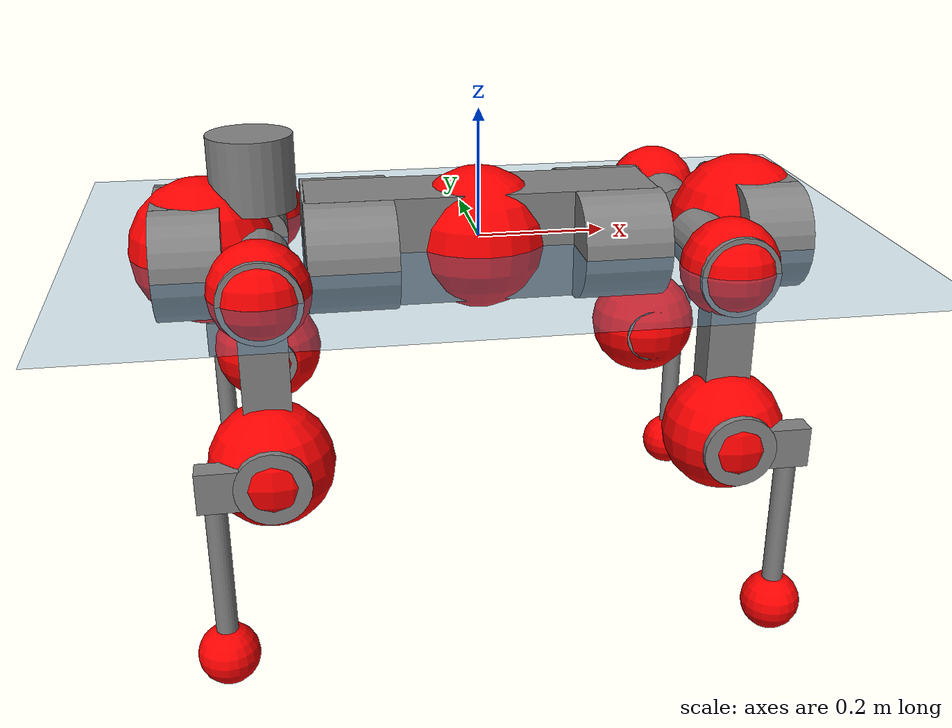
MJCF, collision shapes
<mujoco model="anymal_c">
  <compiler angle="radian" assetdir="assets" balanceinertia="true" inertiafromgeom="false"/>

  <option timestep="0.005" density="1.2" viscosity="2e-05"/>

  <size nkey="1"/>

  <visual>
    <quality shadowsize="8192"/>
    <map shadowclip="0.5"/>
  </visual>

  <default>
    <default class="/">
      <material specular="0" shininess="0.25"/>
      <geom contype="0" conaffinity="0" group="1" solref="-1000 -80"/>
      <site size="0.01 0.005 0.005" group="5"/>
      <general forcelimited="true" forcerange="-80 80" biastype="affine" gainprm="80" biasprm="0 -80 -2"/>
      <default class="anymal_c">
        <joint armature="0.01" damping="0.01" frictionloss="0.1"/>
        <default class="visual">
          <geom type="mesh" group="2"/>
          <default class="visual_zflip"/>
        </default>
        <default class="collision">
          <geom type="cylinder" group="3"/>
          <default class="foot">
            <geom size="0.03 0 0" type="sphere" condim="6" priority="1" friction="0.8 0.02 0.01" solimp="0.015 1 0.03"/>
          </default>
        </default>
      </default>
      <default class="reward_collision_sphere">
        <geom group="5" rgba="1 0 0 1"/>
      </default>
    </default>
  </default>

  <asset>
    <texture type="skybox" colorspace="auto" name="//unnamed_texture_0" builtin="gradient" rgb1="0.95 0.95 0.95" rgb2="0.95 0.95 0.95" width="100" height="600"/>
    <texture type="2d" colorspace="auto" name="texplane" builtin="checker" rgb1="0.345 0.575 0.748" rgb2="0.345 0.575 0.748" markrgb="1 1 1" width="512" height="512"/>
    <texture type="2d" colorspace="linear" name="base" file="base.png"/>
    <texture type="2d" colorspace="linear" name="top_shell" file="top_shell.png"/>
    <texture type="2d" colorspace="linear" name="bottom_shell" file="bottom_shell.png"/>
    <texture type="2d" colorspace="linear" name="remote" file="remote.png"/>
    <texture type="2d" colorspace="linear" name="hatch" file="hatch.png"/>
    <texture type="2d" colorspace="linear" name="handle" file="handle.png"/>
    <texture type="2d" colorspace="linear" name="face" file="face.png"/>
    <texture type="2d" colorspace="linear" name="battery" file="battery.png"/>
    <texture type="2d" colorspace="linear" name="lidar_cage" file="lidar_cage.png"/>
    <texture type="2d" colorspace="linear" name="depth_camera" file="depth_camera.png"/>
    <texture type="2d" colorspace="linear" name="wide_angle_camera" file="wide_angle_camera.png"/>
    <texture type="2d" colorspace="linear" name="lidar" file="lidar.png"/>
    <texture type="2d" colorspace="linear" name="drive" file="drive.png"/>
    <texture type="2d" colorspace="linear" name="hip_l" file="hip_l.png"/>
    <texture type="2d" colorspace="linear" name="shank_l" file="shank_l.png"/>
    <texture type="2d" colorspace="linear" name="foot" file="foot.png"/>
    <texture type="2d" colorspace="linear" name="thigh" file="thigh.png"/>
    <texture type="2d" colorspace="linear" name="shank_r" file="shank_r.png"/>
    <texture type="2d" colorspace="linear" name="hip_r" file="hip_r.png"/>
    <material name="MatPlane" class="/" texture="texplane" texuniform="true" texrepeat="2 2" specular="0.9" shininess="0.5"/>
    <material name="black_plastic" class="/" rgba="0.007 0.007 0.007 1"/>
    <material name="green" class="/" rgba="0.052 0.178 0.033 1"/>
    <material name="red" class="/" rgba="0.178 0.006 0.005 1"/>
    <material name="yellow" class="/" rgba="0.178 0.119 0.006 1"/>
    <material name="lwl" class="/" rgba="0.8 0.8 0.8 1"/>
    <material name="base" class="/" texture="base"/>
    <material name="top_shell" class="/" texture="top_shell"/>
    <material name="bottom_shell" class="/" texture="bottom_shell"/>
    <material name="hip_l" class="/" texture="hip_l"/>
    <material name="thigh" class="/" texture="thigh"/>
    <material name="shank_l" class="/" texture="shank_l"/>
    <material name="foot" class="/" texture="foot"/>
    <material name="hip_r" class="/" texture="hip_r"/>
    <material name="shank" class="/" texture="shank_r"/>
    <material name="hatch" class="/" texture="hatch"/>
    <material name="remote" class="/" texture="remote"/>
    <material name="handle" class="/" texture="handle"/>
    <material name="face" class="/" texture="face"/>
    <material name="depth_camera" class="/" texture="depth_camera"/>
    <material name="wide_angle_camera" class="/" texture="wide_angle_camera"/>
    <material name="battery" class="/" texture="battery"/>
    <material name="lidar_cage" class="/" texture="lidar_cage"/>
    <material name="lidar" class="/" texture="lidar"/>
    <material name="drive" class="/" texture="drive"/>
    <mesh name="base_0" class="/" file="base_0.obj"/>
    <mesh name="base_1" class="/" file="base_1.obj"/>
    <mesh name="base_2" class="/" file="base_2.obj"/>
    <mesh name="base_3" class="/" file="base_3.obj"/>
    <mesh name="base_4" class="/" file="base_4.obj"/>
    <mesh name="base_5" class="/" file="base_5.obj"/>
    <mesh name="top_shell" class="/" file="top_shell.obj"/>
    <mesh name="bottom_shell" class="/" file="bottom_shell.obj"/>
    <mesh name="remote" class="/" file="remote.obj"/>
    <mesh name="handle" class="/" file="handle.obj"/>
    <mesh name="face" class="/" file="face.obj"/>
    <mesh name="wide_angle_camera" class="/" file="wide_angle_camera.obj"/>
    <mesh name="depth_camera" class="/" file="depth_camera.obj"/>
    <mesh name="battery" class="/" file="battery.obj"/>
    <mesh name="lidar_cage" class="/" file="lidar_cage.obj"/>
    <mesh name="lidar" class="/" file="lidar.obj"/>
    <mesh name="drive" class="/" file="drive.obj"/>
    <mesh name="hip_l" class="/" file="hip_l.obj"/>
    <mesh name="thigh" class="/" file="thigh.obj"/>
    <mesh name="shank_l" class="/" file="shank_l.obj"/>
    <mesh name="foot" class="/" file="foot.obj"/>
    <mesh name="hip_r" class="/" file="hip_r.obj"/>
    <mesh name="hatch" class="/" file="hatch.obj"/>
    <mesh name="shank_r" class="/" file="shank_r.obj"/>
  </asset>

  <worldbody>
    <geom name="floor" class="/" size="100 100 0.125" type="plane" group="0" material="MatPlane"/>
    <light name="toplight_shadow" class="/" pos="0 0 5" dir="0.0990148 0.0990148 -0.990148" type="directional" ambient="0.04 0.04 0.04" diffuse="0.55 0.55 0.55" specular="0.12 0.12 0.12"/>
    <light name="toplight_fill" class="/" pos="0 0 5" dir="0.0990148 0.0990148 -0.990148" type="directional" castshadow="false" ambient="0.04 0.04 0.04" diffuse="0.3 0.3 0.3" specular="0.08 0.08 0.08"/>
    <body name="trunk" childclass="anymal_c" pos="0.000245501 0.00201447 -0.00152734" quat="1 9.22672e-05 4.51224e-05 0.000233561">
      <inertial pos="0.000815845 0.00108307 0.0444434" quat="0.497883 0.49794 0.497943 0.506184" mass="15.6521" diaginertia="0.469136 0.453248 0.120853"/>
      <joint name="//unnamed_joint_0" type="free" armature="0" damping="0" frictionloss="0"/>
      <geom name="//unnamed_geom_1" class="visual" material="green" mesh="base_0"/>
      <geom name="//unnamed_geom_2" class="visual" material="yellow" mesh="base_1"/>
      <geom name="//unnamed_geom_3" class="visual" material="red" mesh="base_2"/>
      <geom name="//unnamed_geom_4" class="visual" material="black_plastic" mesh="base_3"/>
      <geom name="//unnamed_geom_5" class="visual" material="lwl" mesh="base_4"/>
      <geom name="//unnamed_geom_6" class="visual" material="base" mesh="base_5"/>
      <geom name="trunk_1" class="collision" size="0.269179 0.0649742 0.0835383" type="box"/>
      <geom name="trunk_2" class="collision" size="0.0835383 0.0672947" pos="0.205825 0.0658773 0" quat="0.707107 0 0.707107 0"/>
      <geom name="trunk_3" class="collision" size="0.0835383 0.0672947" pos="-0.205825 0.0658773 0" quat="0.707107 0 0.707107 0"/>
      <geom name="trunk_4" class="collision" size="0.0835383 0.0672947" pos="0.205825 -0.0658773 0" quat="0.707107 0 0.707107 0"/>
      <geom name="trunk_5" class="collision" size="0.0835383 0.0672947" pos="-0.205825 -0.0658773 0" quat="0.707107 0 0.707107 0"/>
      <geom name="//unnamed_geom_12" class="visual" material="top_shell" mesh="top_shell"/>
      <geom name="//unnamed_geom_13" class="visual" material="bottom_shell" mesh="bottom_shell"/>
      <geom name="//unnamed_geom_14" class="visual" material="remote" mesh="remote"/>
      <geom name="//unnamed_geom_15" class="visual" material="handle" mesh="handle"/>
      <geom name="//unnamed_geom_16" class="visual" pos="0.392251 0 0" quat="1 0 0 0" material="face" mesh="face"/>
      <geom name="trunk_6" class="collision" size="0.0510512 0.0649742 0.0835383" pos="0.444299 0 0" type="box"/>
      <geom name="//unnamed_geom_18" class="collision" size="0.0835383 0.0510512" pos="0.444299 0.0658773 0" quat="0.707107 0 0.707107 0"/>
      <geom name="//unnamed_geom_19" class="collision" size="0.0835383 0.0510512" pos="0.444299 -0.0658773 0" quat="0.707107 0 0.707107 0"/>
      <geom name="//unnamed_geom_20" class="visual" pos="0.436868 0 -0.0258243" quat="0.965926 0 0.258819 0" material="depth_camera" mesh="depth_camera"/>
      <geom name="//unnamed_geom_21" class="visual" pos="0.485464 0 0.0134308" material="wide_angle_camera" mesh="wide_angle_camera"/>
      <geom name="//unnamed_geom_22" class="visual_zflip" pos="-0.392251 0 0" quat="0 0 0 1" material="face" mesh="face"/>
      <geom name="trunk_7" class="collision" size="0.0510512 0.0649742 0.0835383" pos="-0.444299 0 0" quat="0 0 0 1" type="box"/>
      <geom name="//unnamed_geom_24" class="collision" size="0.0835383 0.0510512" pos="-0.444299 -0.0658773 0" quat="0 -0.707107 0 0.707107"/>
      <geom name="//unnamed_geom_25" class="collision" size="0.0835383 0.0510512" pos="-0.444299 0.0658773 0" quat="0 -0.707107 0 0.707107"/>
      <geom name="//unnamed_geom_26" class="visual" pos="-0.436868 0 -0.0258243" quat="0 -0.258819 0 0.965926" material="depth_camera" mesh="depth_camera"/>
      <geom name="//unnamed_geom_27" class="visual_zflip" pos="-0.485464 0 0.0134308" quat="0 0 0 1" material="wide_angle_camera" mesh="wide_angle_camera"/>
      <geom name="//unnamed_geom_28" class="visual" material="battery" mesh="battery"/>
      <geom name="//unnamed_geom_29" class="visual" pos="0 0.0718863 0.0264366" quat="0.683013 -0.183013 0.183013 0.683013" material="depth_camera" mesh="depth_camera"/>
      <geom name="//unnamed_geom_30" class="visual" pos="0 -0.0718863 0.0264366" quat="0.683013 0.183013 0.183013 -0.683013" material="depth_camera" mesh="depth_camera"/>
      <geom name="//unnamed_geom_31" class="visual" pos="-0.344462 0 0.0659429" quat="1 0 0 0" material="lidar_cage" mesh="lidar_cage"/>
      <geom name="trunk_8" class="collision" size="0.0649742 0.0556922" pos="-0.344462 0 0.119774"/>
      <geom name="//unnamed_geom_33" class="visual" pos="-0.344462 -2.05033e-06 0.127579" quat="0.707107 0 0 -0.707107" material="lidar" mesh="lidar"/>
      <geom name="//unnamed_geom_34" class="visual" pos="0.283802 0.0978592 7.57651e-10" quat="0.258819 0.965926 0 0" material="drive" mesh="drive"/>
      <geom name="//unnamed_geom_35" class="visual" pos="0.283802 -0.0978592 -7.57651e-10" quat="0.258819 -0.965926 0 0" material="drive" mesh="drive"/>
      <geom name="//unnamed_geom_36" class="visual" pos="-0.283802 0.0978592 -7.57651e-10" quat="0 0 0.965926 -0.258819" material="drive" mesh="drive"/>
      <geom name="//unnamed_geom_37" class="visual" pos="-0.283802 -0.0978592 7.57651e-10" quat="0 0 -0.965926 -0.258819" material="drive" mesh="drive"/>
      <geom name="//unnamed_geom_38" class="visual" pos="0.109773 0 0.0654943" quat="1 0 0 0" material="hatch" mesh="hatch"/>
      <geom name="//unnamed_geom_39" class="reward_collision_sphere" size="0.111384"/>
      <geom name="//unnamed_geom_40" class="reward_collision_sphere" size="0.111384" pos="0.425845 0 0"/>
      <geom name="//unnamed_geom_41" class="reward_collision_sphere" size="0.111384" pos="-0.425845 0 0"/>
      <site name="imu" pos="0.241248 0.0315324 0.0296592" size="0.00928203"/>
      <camera name="track" pos="0 -1.88221 0" quat="0.707107 0.707107 0 0" mode="trackcom"/>
      <camera name="ego_camera" pos="0.425845 0 -0.0358873" quat="-0.5 -0.5 0.5 0.5"/>
      <body name="LF_HIP" pos="0.283991 0.098287 0.0024182" quat="0.257379 0.966309 -0.00140068 0.000690361">
        <inertial pos="0.0522474 -0.0131081 -0.00983101" quat="-0.128278 0.710368 -0.136991 0.678348" mass="2.13672" diaginertia="0.00428075 0.00345517 0.00187107"/>
        <joint name="LF_HAA" pos="0 0 0" axis="0.999977 0.0065022 -0.00195657" range="-0.777003 0.504858" armature="0.00890743" damping="0.0169138" frictionloss="0.0828667"/>
        <geom name="//unnamed_geom_42" class="visual" pos="0 4.45692e-05 -7.32045e-06" quat="0.258819 -0.965926 0 0" material="hip_l" mesh="hip_l"/>
        <geom name="//unnamed_geom_43" class="visual" pos="0.0566848 -0.0686013 -0.0392821" quat="0.183013 -0.683013 0.683013 0.183013" material="drive" mesh="drive"/>
        <geom name="//unnamed_geom_44" class="collision" size="0.0464102 0.0649742" pos="0.0566848 -0.0112554 -0.00619505" quat="-0.353553 -0.612372 0.612372 -0.353553"/>
        <body name="LF_THIGH" pos="0.0570162 -0.0692078 -0.0422487" quat="0.183685 -0.682869 0.682928 0.183194">
          <inertial pos="0.0296233 0.0030399 -0.215646" quat="0.992361 -0.00329988 -0.0929587 0.0810364" mass="2.39418" diaginertia="0.0237095 0.0218241 0.00251636"/>
          <joint name="LF_HFE" pos="0 0 0" axis="0.999974 0.00597603 -0.00413818" stiffness="0.0076715" range="-3.14075 3.05632" armature="0.00872305" damping="0.0249132" frictionloss="0.0931316"/>
          <geom name="//unnamed_geom_45" class="visual" pos="0.000103834 1.63618e-07 0" quat="0.707107 0 0 -0.707107" material="thigh" mesh="thigh"/>
          <geom name="//unnamed_geom_46" class="collision" size="0.0603332 0.0371281" pos="0.0378529 0 0" quat="0.5 0.5 -0.5 -0.5"/>
          <geom name="//unnamed_geom_47" class="collision" size="0.0348076 0.0278461 0.131168" pos="0.0283897 0 -0.126784" quat="0.707107 0 0 -0.707107" type="box"/>
          <geom name="//unnamed_geom_48" class="visual" pos="0.0949162 0 -0.255697" quat="1 0 0 0" material="drive" mesh="drive"/>
          <geom name="//unnamed_geom_49" class="collision" size="0.0464102 0.0649742" pos="0.0286736 0 -0.255697" quat="0.707107 0 0.707107 0"/>
          <geom name="//unnamed_geom_50" class="reward_collision_sphere" size="0.0742563" pos="0.0236581 0 0"/>
          <body name="LF_SHANK" pos="0.0900454 -0.00371981 -0.255536" quat="1 0.000264384 4.89411e-05 4.16338e-05">
            <inertial pos="0.00269778 -0.0587551 -0.0722992" quat="0.993087 -0.114915 -0.00139585 -0.0239044" mass="0.45035" diaginertia="0.00765982 0.00655765 0.000643815"/>
            <joint name="LF_KFE" pos="0 0 0" axis="0.999972 0.00278574 0.00697439" stiffness="0.0188493" range="-3.13613 3.18429" armature="0.00952679" damping="0.00877408" frictionloss="0.0844922"/>
            <geom name="//unnamed_geom_51" class="visual" pos="3.38579e-05 0.000180532 0" quat="0.707107 0 0 -0.707107" material="shank_l" mesh="shank_l"/>
            <geom name="LF_kfe_act" class="collision" size="0.0556922 0.0185641" pos="0.0189265 0 0" quat="0.5 0.5 -0.5 -0.5"/>
            <geom name="//unnamed_geom_53" class="collision" size="0.0533708 0.0313269 0.0176359" pos="0.0189265 -0.0541126 0" quat="0.5 0.5 -0.5 -0.5" type="box"/>
            <geom name="//unnamed_geom_54" class="visual" pos="0.0123495 -0.0827119 -0.303221" quat="0.382683 0 0 -0.92388" material="foot" mesh="foot"/>
            <geom name="LF_calf" class="collision" size="0.0162436 0.131111" pos="0.0123495 -0.0827701 -0.15161" quat="0.707107 0 0 -0.707107"/>
            <geom name="LF_foot" class="foot" size="0.0312522" pos="0.0123495 -0.0827701 -0.283034" quat="0.707107 0 0 -0.707107"/>
            <geom name="//unnamed_geom_57" class="reward_collision_sphere" size="0.0928203" pos="-0.0473162 0 0"/>
            <geom name="//unnamed_geom_58" class="reward_collision_sphere" size="0.0464102" pos="0.0123495 -0.0827701 -0.283034"/>
            <site name="LF_foot" class="foot" pos="0.0123495 -0.0827701 -0.283034" quat="0.707107 0 0 -0.707107" size="0.00928203"/>
          </body>
        </body>
      </body>
      <body name="RF_HIP" pos="0.285789 -0.0962764 -0.00306941" quat="0.258818 -0.965926 -0.000216703 -0.000163713">
        <inertial pos="0.051225 0.014497 -0.00800239" quat="0.129477 0.689165 0.130973 0.700809" mass="2.14134" diaginertia="0.00418001 0.00356727 0.00188409"/>
        <joint name="RF_HAA" pos="0 0 0" axis="0.999992 0.00135208 0.00365819" range="-0.500786 0.733777" armature="0.00925433" damping="0.00608459" frictionloss="0.104196"/>
        <geom name="//unnamed_geom_59" class="visual" pos="0 -4.45688e-05 -7.32043e-06" quat="0.258819 0.965926 0 0" material="hip_r" mesh="hip_r"/>
        <geom name="//unnamed_geom_60" class="visual" pos="0.0566848 0.0686013 -0.0392821" quat="0.183013 0.683013 0.683013 -0.183013" material="drive" mesh="drive"/>
        <geom name="//unnamed_geom_61" class="collision" size="0.0464102 0.0649742" pos="0.0566848 0.0112554 -0.00619505" quat="-0.353553 0.612372 0.612372 0.353553"/>
        <body name="RF_THIGH" pos="0.0586175 0.0657624 -0.0367324" quat="0.183532 0.682791 0.683232 -0.182504">
          <inertial pos="0.0293362 -0.000329415 -0.216782" quat="0.990335 0.00822889 -0.100532 0.0952004" mass="2.428" diaginertia="0.0216228 0.0211455 0.00233151"/>
          <joint name="RF_HFE" pos="0 0 0" axis="0.999978 0.00257665 -0.00612547" stiffness="0.00661385" range="-3.07469 3.11671" armature="0.00978985" damping="0.013427" frictionloss="0.104541"/>
          <geom name="//unnamed_geom_62" class="visual" pos="0.000103834 1.63618e-07 0" quat="0.707107 0 0 -0.707107" material="thigh" mesh="thigh"/>
          <geom name="//unnamed_geom_63" class="collision" size="0.0603332 0.0371281" pos="0.0378529 0 0" quat="0.5 0.5 0.5 0.5"/>
          <geom name="//unnamed_geom_64" class="collision" size="0.0348076 0.0278461 0.131168" pos="0.0283897 0 -0.126784" quat="0.707107 0 0 0.707107" type="box"/>
          <geom name="//unnamed_geom_65" class="visual" pos="0.0949162 0 -0.255697" quat="1 0 0 0" material="drive" mesh="drive"/>
          <geom name="//unnamed_geom_66" class="collision" size="0.0464102 0.0649742" pos="0.0286736 0 -0.255697" quat="0.707107 0 0.707107 0"/>
          <geom name="//unnamed_geom_67" class="reward_collision_sphere" size="0.0742563" pos="0.0236581 0 0"/>
          <body name="RF_SHANK" pos="0.0936512 0.0013035 -0.25458" quat="1 -0.000197811 -8.8725e-05 3.74639e-05">
            <inertial pos="0.00797997 0.057636 -0.0773802" quat="0.992635 0.117831 0.0044626 0.0277911" mass="0.505937" diaginertia="0.0084185 0.00683792 0.000715094"/>
            <joint name="RF_KFE" pos="0 0 0" axis="0.999997 -0.00176639 -0.00192699" range="-3.11563 3.11151" armature="0.00893003" damping="0.0101195" frictionloss="0.0939145"/>
            <geom name="//unnamed_geom_68" class="visual" pos="3.38577e-05 -0.000180532 0" quat="0.707107 0 0 0.707107" material="shank" mesh="shank_r"/>
            <geom name="RF_kfe_act" class="collision" size="0.0556922 0.0185641" pos="0.0189265 0 0" quat="0.5 0.5 0.5 0.5"/>
            <geom name="//unnamed_geom_70" class="collision" size="0.0533708 0.0313269 0.0176359" pos="0.0189265 0.0541126 0" quat="0.5 0.5 0.5 0.5" type="box"/>
            <geom name="//unnamed_geom_71" class="visual" pos="0.0123495 0.0827119 -0.303221" quat="0.382683 0 0 0.92388" material="foot" mesh="foot"/>
            <geom name="RF_calf" class="collision" size="0.0162436 0.131111" pos="0.0123495 0.0827701 -0.15161" quat="0.707107 0 0 0.707107"/>
            <geom name="RF_foot" class="foot" size="0.0299813" pos="0.0123495 0.0827701 -0.283034" quat="0.707107 0 0 0.707107"/>
            <geom name="//unnamed_geom_74" class="reward_collision_sphere" size="0.0928203" pos="-0.0473162 0 0"/>
            <geom name="//unnamed_geom_75" class="reward_collision_sphere" size="0.0464102" pos="0.0123495 0.0827701 -0.283034"/>
            <site name="RF_foot" class="foot" pos="0.0123495 0.0827701 -0.283034" quat="0.707107 0 0 0.707107" size="0.00928203"/>
          </body>
        </body>
      </body>
      <body name="LH_HIP" pos="-0.284955 0.0965098 0.00294741" quat="0.00033831 0.00056322 0.965828 -0.259183">
        <inertial pos="0.0529507 0.0128788 -0.00471776" quat="0.135283 0.683338 0.119914 0.707367" mass="2.09889" diaginertia="0.004237 0.00354435 0.00189534"/>
        <joint name="LH_HAA" pos="0 0 0" axis="1 0.000240478 0.000260677" stiffness="0.00501888" range="-0.577988 0.667507" armature="0.0094508" damping="0.00320971" frictionloss="0.0805744"/>
        <geom name="//unnamed_geom_76" class="visual" pos="0 -4.45688e-05 -7.32043e-06" quat="-0.258819 -0.965926 0 0" material="hip_r" mesh="hip_r"/>
        <geom name="//unnamed_geom_77" class="visual" pos="0.0566848 0.0686013 -0.0392821" quat="0.183013 0.683013 0.683013 -0.183013" material="drive" mesh="drive"/>
        <geom name="//unnamed_geom_78" class="collision" size="0.0464102 0.0649742" pos="0.0566848 0.0112554 -0.00619505" quat="-0.353553 0.612372 0.612372 0.353553"/>
        <body name="LH_THIGH" pos="0.0557641 0.0669855 -0.0347561" quat="0.183008 0.682945 0.683112 -0.1829">
          <inertial pos="0.0315456 0.00188181 -0.215716" quat="0.993701 0.00159869 -0.0803885 0.0780595" mass="2.44467" diaginertia="0.0245337 0.0225842 0.00258339"/>
          <joint name="LH_HFE" pos="0 0 0" axis="0.999933 -0.00695646 0.00926467" range="-3.08825 3.08874" armature="0.0103957" damping="0.0198086" frictionloss="0.095784"/>
          <geom name="//unnamed_geom_79" class="visual" pos="0.000103834 1.63618e-07 0" quat="0.707107 0 0 -0.707107" material="thigh" mesh="thigh"/>
          <geom name="//unnamed_geom_80" class="collision" size="0.0603332 0.0371281" pos="0.0378529 0 0" quat="0.5 0.5 -0.5 -0.5"/>
          <geom name="//unnamed_geom_81" class="collision" size="0.0348076 0.0278461 0.131168" pos="0.0283897 0 -0.126784" quat="0.707107 0 0 -0.707107" type="box"/>
          <geom name="//unnamed_geom_82" class="visual" pos="0.0949162 0 -0.255697" quat="1 0 0 0" material="drive" mesh="drive"/>
          <geom name="//unnamed_geom_83" class="collision" size="0.0464102 0.0649742" pos="0.0286736 0 -0.255697" quat="0.707107 0 0.707107 0"/>
          <geom name="//unnamed_geom_84" class="reward_collision_sphere" size="0.0742563" pos="0.0236581 0 0"/>
          <body name="LH_SHANK" pos="0.0943694 0.00182478 -0.255332" quat="1 -2.53593e-05 -0.000279047 0.000705951">
            <inertial pos="0.00625906 0.0567967 -0.0721843" quat="0.992866 0.116978 0.00431864 0.0226711" mass="0.469578" diaginertia="0.00769248 0.00693989 0.0006249"/>
            <joint name="LH_KFE" pos="0 0 0" axis="0.999969 0.0024215 0.00744991" stiffness="0.0230755" range="-3.09502 3.14025" armature="0.0099808" damping="0.0198902" frictionloss="0.0971603"/>
            <geom name="//unnamed_geom_85" class="visual" pos="3.38577e-05 -0.000180532 0" quat="-0.707107 0 0 -0.707107" material="shank" mesh="shank_r"/>
            <geom name="LH_kfe_act" class="collision" size="0.0556922 0.0185641" pos="0.0189265 0 0" quat="0.5 0.5 -0.5 -0.5"/>
            <geom name="//unnamed_geom_87" class="collision" size="0.0533708 0.0313269 0.0176359" pos="0.0189265 0.0541126 0" quat="0.5 0.5 -0.5 -0.5" type="box"/>
            <geom name="//unnamed_geom_88" class="visual" pos="0.0123495 0.0827119 -0.303221" quat="-0.382683 0 0 -0.92388" material="foot" mesh="foot"/>
            <geom name="LH_calf" class="collision" size="0.0162436 0.131111" pos="0.0123495 0.0827701 -0.15161" quat="0.707107 0 0 -0.707107"/>
            <geom name="LH_foot" class="foot" size="0.0306877" pos="0.0123495 0.0827701 -0.283034" quat="0.707107 0 0 -0.707107"/>
            <geom name="//unnamed_geom_91" class="reward_collision_sphere" size="0.0928203" pos="-0.0473162 0 0"/>
            <geom name="//unnamed_geom_92" class="reward_collision_sphere" size="0.0464102" pos="0.0123495 0.0827701 -0.283034"/>
            <site name="LH_foot" class="foot" pos="0.0123495 0.0827701 -0.283034" quat="0.707107 0 0 -0.707107" size="0.00928203"/>
          </body>
        </body>
      </body>
      <body name="RH_HIP" pos="-0.283671 -0.101289 -0.00100844" quat="-4.29886e-05 -0.000236916 -0.966185 -0.25785">
        <inertial pos="0.0531324 -0.0168847 -0.00732039" quat="-0.127144 0.710337 -0.134978 0.678997" mass="2.39675" diaginertia="0.00454389 0.00370456 0.00202247"/>
        <joint name="RH_HAA" pos="0 0 0" axis="0.999943 -0.00894623 0.00582283" range="-0.677855 0.517609" armature="0.00870808" damping="0.0174219" frictionloss="0.103846"/>
        <geom name="//unnamed_geom_93" class="visual" pos="0 4.45692e-05 -7.32045e-06" quat="-0.258819 0.965926 0 0" material="hip_l" mesh="hip_l"/>
        <geom name="//unnamed_geom_94" class="visual" pos="0.0566848 -0.0686013 -0.0392821" quat="-0.183013 0.683013 -0.683013 -0.183013" material="drive" mesh="drive"/>
        <geom name="//unnamed_geom_95" class="collision" size="0.0464102 0.0649742" pos="0.0566848 -0.0112554 -0.00619505" quat="0.353553 0.612372 -0.612372 0.353553"/>
        <body name="RH_THIGH" pos="0.0591647 -0.0683879 -0.0407378" quat="-0.183436 0.682962 -0.683088 -0.182496">
          <inertial pos="0.0286491 -0.000276329 -0.220448" quat="0.993144 -0.00489688 -0.0807219 0.0844062" mass="2.54567" diaginertia="0.0239275 0.0220961 0.00243642"/>
          <joint name="RH_HFE" pos="0 0 0" axis="0.999911 0.011673 -0.00640885" range="-3.07466 3.08969" armature="0.00917939" damping="0.00720929" frictionloss="0.100095"/>
          <geom name="//unnamed_geom_96" class="visual" pos="0.000103834 1.63618e-07 0" quat="0.707107 0 0 -0.707107" material="thigh" mesh="thigh"/>
          <geom name="//unnamed_geom_97" class="collision" size="0.0603332 0.0371281" pos="0.0378529 0 0" quat="0.5 0.5 0.5 0.5"/>
          <geom name="//unnamed_geom_98" class="collision" size="0.0348076 0.0278461 0.131168" pos="0.0283897 0 -0.126784" quat="0.707107 0 0 0.707107" type="box"/>
          <geom name="//unnamed_geom_99" class="visual" pos="0.0949162 0 -0.255697" quat="1 0 0 0" material="drive" mesh="drive"/>
          <geom name="//unnamed_geom_100" class="collision" size="0.0464102 0.0649742" pos="0.0286736 0 -0.255697" quat="0.707107 0 0.707107 0"/>
          <geom name="//unnamed_geom_101" class="reward_collision_sphere" size="0.0742563" pos="0.0236581 0 0"/>
          <body name="RH_SHANK" pos="0.0913837 0.000316377 -0.255811" quat="0.999999 -0.000167656 -0.000370045 -0.00115709">
            <inertial pos="0.00770284 -0.0574403 -0.0717766" quat="0.993496 -0.110529 0.00794515 -0.0261926" mass="0.473338" diaginertia="0.00745532 0.00670285 0.000654991"/>
            <joint name="RH_KFE" pos="0 0 0" axis="0.999987 -0.00222609 -0.00469418" range="-3.13315 3.15699" armature="0.00852362" damping="0.0269329" frictionloss="0.0957232"/>
            <geom name="//unnamed_geom_102" class="visual" pos="3.38579e-05 0.000180532 0" quat="0.707107 0 0 -0.707107" material="shank_l" mesh="shank_l"/>
            <geom name="RH_kfe_act" class="collision" size="0.0556922 0.0185641" pos="0.0189265 0 0" quat="0.5 0.5 0.5 0.5"/>
            <geom name="//unnamed_geom_104" class="collision" size="0.0533708 0.0313269 0.0176359" pos="0.0189265 -0.0541126 0" quat="0.5 0.5 0.5 0.5" type="box"/>
            <geom name="//unnamed_geom_105" class="visual" pos="0.0123495 -0.0827119 -0.303221" quat="0.382683 0 0 -0.92388" material="foot" mesh="foot"/>
            <geom name="RH_calf" class="collision" size="0.0162436 0.131111" pos="0.0123495 -0.0827701 -0.15161" quat="0.707107 0 0 0.707107"/>
            <geom name="RH_foot" class="foot" size="0.0210661" pos="0.0123495 -0.0827701 -0.283034" quat="0.707107 0 0 0.707107"/>
            <geom name="//unnamed_geom_108" class="reward_collision_sphere" size="0.0928203" pos="-0.0473162 0 0"/>
            <geom name="//unnamed_geom_109" class="reward_collision_sphere" size="0.0464102" pos="0.0123495 -0.0827701 -0.283034"/>
            <site name="RH_foot" class="foot" pos="0.0123495 -0.0827701 -0.283034" quat="0.707107 0 0 0.707107" size="0.00928203"/>
          </body>
        </body>
      </body>
    </body>
  </worldbody>

  <contact>
    <pair class="/" geom1="floor" geom2="LF_foot" name="//unnamed_contact_0"/>
    <pair class="/" geom1="floor" geom2="RF_foot" name="//unnamed_contact_1"/>
    <pair class="/" geom1="floor" geom2="LH_foot" name="//unnamed_contact_2"/>
    <pair class="/" geom1="floor" geom2="RH_foot" name="//unnamed_contact_3"/>
  </contact>

  <actuator>
    <general name="LF_HAA" class="/" joint="LF_HAA" forcerange="-83.4494 83.4494" gainprm="68.8539" biasprm="0 -68.8539 -1.73384"/>
    <general name="LF_HFE" class="/" joint="LF_HFE" forcerange="-68.9814 68.9814" gainprm="68.8539" biasprm="0 -68.8539 -1.73384"/>
    <general name="LF_KFE" class="/" joint="LF_KFE" forcerange="-81.3077 81.3077" gainprm="68.8539" biasprm="0 -68.8539 -1.73384"/>
    <general name="RF_HAA" class="/" joint="RF_HAA" forcerange="-80.2179 80.2179" gainprm="68.8539" biasprm="0 -68.8539 -1.73384"/>
    <general name="RF_HFE" class="/" joint="RF_HFE" forcerange="-77.1417 77.1417" gainprm="68.8539" biasprm="0 -68.8539 -1.73384"/>
    <general name="RF_KFE" class="/" joint="RF_KFE" forcerange="-59.9701 59.9701" gainprm="68.8539" biasprm="0 -68.8539 -1.73384"/>
    <general name="LH_HAA" class="/" joint="LH_HAA" forcerange="-66.0335 66.0335" gainprm="68.8539" biasprm="0 -68.8539 -1.73384"/>
    <general name="LH_HFE" class="/" joint="LH_HFE" forcerange="-79.3021 79.3021" gainprm="68.8539" biasprm="0 -68.8539 -1.73384"/>
    <general name="LH_KFE" class="/" joint="LH_KFE" forcerange="-80.2054 80.2054" gainprm="68.8539" biasprm="0 -68.8539 -1.73384"/>
    <general name="RH_HAA" class="/" joint="RH_HAA" forcerange="-75.9727 75.9727" gainprm="68.8539" biasprm="0 -68.8539 -1.73384"/>
    <general name="RH_HFE" class="/" joint="RH_HFE" forcerange="-86.5745 86.5745" gainprm="68.8539" biasprm="0 -68.8539 -1.73384"/>
    <general name="RH_KFE" class="/" joint="RH_KFE" forcerange="-77.9751 77.9751" gainprm="68.8539" biasprm="0 -68.8539 -1.73384"/>
  </actuator>

  <sensor>
    <gyro site="imu" name="imu_angular_velocity"/>
    <velocimeter site="imu" name="imu_linear_velocity"/>
    <framelinvel objtype="site" objname="LF_foot" name="LF_foot_global_linear_velocity"/>
    <framelinvel objtype="site" objname="RF_foot" name="RF_foot_global_linear_velocity"/>
    <framelinvel objtype="site" objname="LH_foot" name="LH_foot_global_linear_velocity"/>
    <framelinvel objtype="site" objname="RH_foot" name="RH_foot_global_linear_velocity"/>
  </sensor>

  <keyframe>
    <key name="home" qpos="0 0 0.55 1 0 0 0 0 0.4 -0.8 0 -0.4 0.8 0 -0.4 0.8 0 0.4 -0.8"/>
  </keyframe>
</mujoco>
